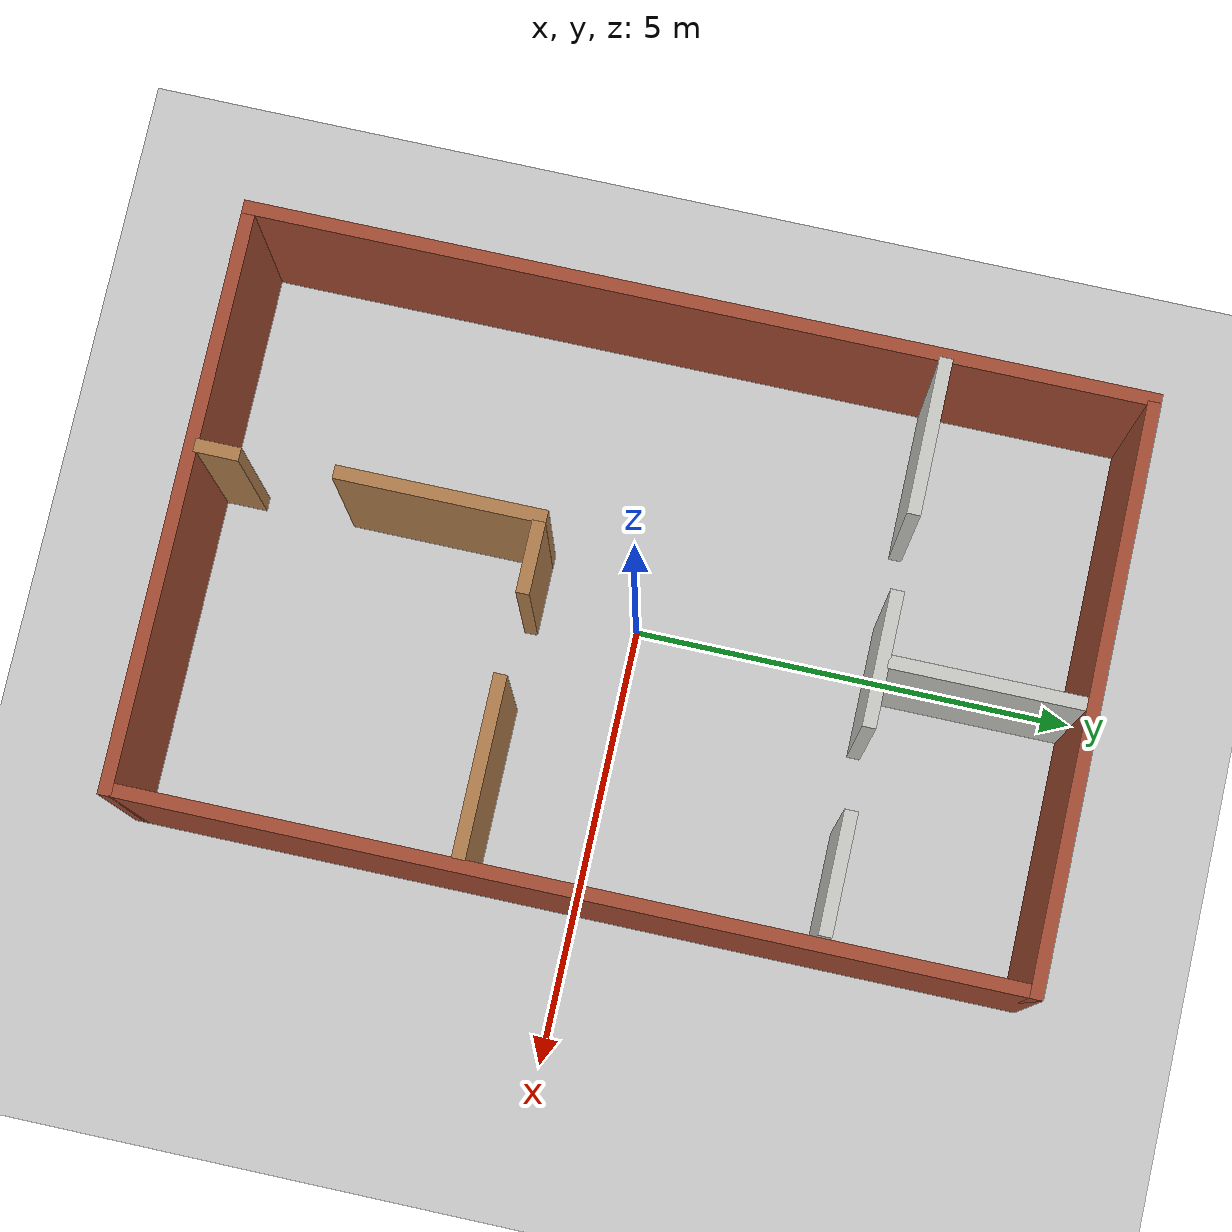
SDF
<?xml version="1.0" ?>
<sdf version="1.5">
  <world name="default">
    <include>
      <uri>model://ground_plane</uri>
    </include>
    <include>
      <uri>model://sun</uri>
    </include>
    <include>
      <pose> 0 0 0 0 0 -1.57</pose>
      <uri>model://Scenario</uri>
    </include>
    <include>
      <uri>model://QR_Code</uri>
      <pose>3.15 -3.0 1.0 0 1.5707 0</pose>
    </include>
  </world>
</sdf>

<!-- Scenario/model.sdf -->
<sdf version='1.7'>
  <model name='Scenario'>
    <pose>0.01 0 0 0 -0 0</pose>
    <link name='Wall_1'>
      <collision name='Wall_1_Collision'>
        <geometry>
          <box>
            <size>10.082 0.15 2.5</size>
          </box>
        </geometry>
        <pose>0 0 1.25 0 -0 0</pose>
      </collision>
      <visual name='Wall_1_Visual'>
        <pose>0 0 1.25 0 -0 0</pose>
        <geometry>
          <box>
            <size>10.082 0.15 2.5</size>
          </box>
        </geometry>
        <material>
          <script>
            <uri>file://media/materials/scripts/gazebo.material</uri>
            <name>Gazebo/Bricks</name>
          </script>
          <ambient>1 1 1 1</ambient>
        </material>
        <meta>
          <layer>0</layer>
        </meta>
      </visual>
      <pose>0 3.225 0 0 -0 0</pose>
    </link>
    <link name='Wall_11'>
      <collision name='Wall_11_Collision'>
        <geometry>
          <box>
            <size>10.08 0.15 2.5</size>
          </box>
        </geometry>
        <pose>0 0 1.25 0 -0 0</pose>
      </collision>
      <visual name='Wall_11_Visual'>
        <pose>0 0 1.25 0 -0 0</pose>
        <geometry>
          <box>
            <size>10.08 0.15 2.5</size>
          </box>
        </geometry>
        <material>
          <script>
            <uri>file://media/materials/scripts/gazebo.material</uri>
            <name>Gazebo/Bricks</name>
          </script>
          <ambient>1 1 1 1</ambient>
        </material>
        <meta>
          <layer>0</layer>
        </meta>
      </visual>
      <pose>0.001 -3.225 0 0 -0 3.14159</pose>
    </link>
    <link name='Wall_13'>
      <collision name='Wall_13_Collision'>
        <geometry>
          <box>
            <size>6.5 0.15 2.5</size>
          </box>
        </geometry>
        <pose>0 0 1.25 0 -0 0</pose>
      </collision>
      <visual name='Wall_13_Visual'>
        <pose>0 0 1.25 0 -0 0</pose>
        <geometry>
          <box>
            <size>6.5 0.15 2.5</size>
          </box>
        </geometry>
        <material>
          <script>
            <uri>file://media/materials/scripts/gazebo.material</uri>
            <name>Gazebo/Bricks</name>
          </script>
          <ambient>1 1 1 1</ambient>
        </material>
        <meta>
          <layer>0</layer>
        </meta>
      </visual>
      <pose>-4.966 0.05 0 0 -0 -1.5708</pose>
    </link>
    <link name='Wall_15'>
      <collision name='Wall_15_Collision'>
        <geometry>
          <box>
            <size>1.35 0.15 2.5</size>
          </box>
        </geometry>
        <pose>0 0 1.25 0 -0 0</pose>
      </collision>
      <visual name='Wall_15_Visual'>
        <pose>0 0 1.25 0 -0 0</pose>
        <geometry>
          <box>
            <size>1.35 0.15 2.5</size>
          </box>
        </geometry>
        <material>
          <script>
            <uri>file://media/materials/scripts/gazebo.material</uri>
            <name>Gazebo/CeilingTiled</name>
          </script>
          <ambient>1 0.764706 0.305882 1</ambient>
        </material>
        <meta>
          <layer>0</layer>
        </meta>
      </visual>
      <pose>-2.70015 2.45469 0 0 -0 -1.5708</pose>
    </link>
    <link name='Wall_17'>
      <collision name='Wall_17_Collision'>
        <geometry>
          <box>
            <size>1.5 0.15 2.5</size>
          </box>
        </geometry>
        <pose>0 0 1.25 0 -0 0</pose>
      </collision>
      <visual name='Wall_17_Visual'>
        <pose>0 0 1.25 0 -0 0</pose>
        <geometry>
          <box>
            <size>1.5 0.15 2.5</size>
          </box>
        </geometry>
        <material>
          <script>
            <uri>file://media/materials/scripts/gazebo.material</uri>
            <name>Gazebo/CeilingTiled</name>
          </script>
          <ambient>1 0.764706 0.305882 1</ambient>
        </material>
        <meta>
          <layer>0</layer>
        </meta>
      </visual>
      <pose>-2.70015 0.136023 0 0 -0 -1.5708</pose>
    </link>
    <link name='Wall_19'>
      <collision name='Wall_19_Collision'>
        <geometry>
          <box>
            <size>2.14985 0.15 2.5</size>
          </box>
        </geometry>
        <pose>0 0 1.25 0 -0 0</pose>
      </collision>
      <visual name='Wall_19_Visual'>
        <pose>0 0 1.25 0 -0 0</pose>
        <geometry>
          <box>
            <size>2.14985 0.15 2.5</size>
          </box>
        </geometry>
        <material>
          <script>
            <uri>file://media/materials/scripts/gazebo.material</uri>
            <name>Gazebo/CeilingTiled</name>
          </script>
          <ambient>1 1 1 1</ambient>
        </material>
        <meta>
          <layer>0</layer>
        </meta>
      </visual>
      <pose>-3.833 0.153 0 0 -0 3.14159</pose>
    </link>
    <link name='Wall_21'>
      <collision name='Wall_21_Collision'>
        <geometry>
          <box>
            <size>1.75 0.15 2.5</size>
          </box>
        </geometry>
        <pose>0 0 1.25 0 -0 0</pose>
      </collision>
      <visual name='Wall_21_Visual'>
        <pose>0 0 1.25 0 -0 0</pose>
        <geometry>
          <box>
            <size>1.75 0.15 2.5</size>
          </box>
        </geometry>
        <material>
          <script>
            <uri>file://media/materials/scripts/gazebo.material</uri>
            <name>Gazebo/CeilingTiled</name>
          </script>
          <ambient>1 0.764706 0.305882 1</ambient>
        </material>
        <meta>
          <layer>0</layer>
        </meta>
      </visual>
      <pose>-2.70015 -2.32424 0 0 -0 1.5708</pose>
    </link>
    <link name='Wall_23'>
      <collision name='Wall_23_Collision'>
        <geometry>
          <box>
            <size>2.00 0.15 2.5</size>
          </box>
        </geometry>
        <pose>0 0 1.25 0 -0 0</pose>
      </collision>
      <visual name='Wall_23_Visual'>
        <pose>0 0 1.25 0 -0 0</pose>
        <geometry>
          <box>
            <size>2.00 0.15 2.5</size>
          </box>
        </geometry>
        <material>
          <script>
            <uri>file://media/materials/scripts/gazebo.material</uri>
            <name>Gazebo/Wood</name>
          </script>
          <ambient>1 1 1 1</ambient>
        </material>
        <meta>
          <layer>0</layer>
        </meta>
      </visual>
      <pose>1.20014 2.15716 0 0 -0 -1.5708</pose>
    </link>
    <link name='Wall_25'>
      <collision name='Wall_25_Collision'>
        <geometry>
          <box>
            <size>0.80 0.15 2.5</size>
          </box>
        </geometry>
        <pose>0 0 1.25 0 -0 0</pose>
      </collision>
      <visual name='Wall_25_Visual'>
        <pose>0 0 1.25 0 -0 0</pose>
        <geometry>
          <box>
            <size>0.80 0.15 2.5</size>
          </box>
        </geometry>
        <material>
          <script>
            <uri>file://media/materials/scripts/gazebo.material</uri>
            <name>Gazebo/Wood</name>
          </script>
          <ambient>1 1 1 1</ambient>
        </material>
        <meta>
          <layer>0</layer>
        </meta>
      </visual>
      <pose>1.165 -0.13 0 0 -0 -1.5708</pose>
    </link>
    <link name='Wall_28'>
      <collision name='Wall_28_Collision'>
        <geometry>
          <box>
            <size>2.326 0.15 2.5</size>
          </box>
        </geometry>
        <pose>0 0 1.25 0 -0 0</pose>
      </collision>
      <visual name='Wall_28_Visual'>
        <pose>0 0 1.25 0 -0 0</pose>
        <geometry>
          <box>
            <size>2.326 0.15 2.5</size>
          </box>
        </geometry>
        <material>
          <script>
            <uri>file://media/materials/scripts/gazebo.material</uri>
            <name>Gazebo/Wood</name>
          </script>
          <ambient>1 1 1 1</ambient>
        </material>
        <meta>
          <layer>0</layer>
        </meta>
      </visual>
      <pose>2.252 -0.588 0 0 -0 3.14159</pose>
    </link>
    <link name='Wall_30'>
      <collision name='Wall_30_Collision'>
        <geometry>
          <box>
            <size>0.5 0.15 2.5</size>
          </box>
        </geometry>
        <pose>0 0 1.25 0 -0 0</pose>
      </collision>
      <visual name='Wall_30_Visual'>
        <pose>0 0 1.25 0 -0 0</pose>
        <geometry>
          <box>
            <size>0.5 0.15 2.5</size>
          </box>
        </geometry>
        <material>
          <script>
            <uri>file://media/materials/scripts/gazebo.material</uri>
            <name>Gazebo/Wood</name>
          </script>
          <ambient>1 1 1 1</ambient>
        </material>
        <meta>
          <layer>0</layer>
        </meta>
      </visual>
      <pose>4.68076 -0.553202 0 0 -0 0</pose>
    </link>
    <link name='Wall_9'>
      <collision name='Wall_9_Collision'>
        <geometry>
          <box>
            <size>6.6 0.15 2.5</size>
          </box>
        </geometry>
        <pose>0 0 1.25 0 -0 0</pose>
      </collision>
      <visual name='Wall_9_Visual'>
        <pose>0 0 1.25 0 -0 0</pose>
        <geometry>
          <box>
            <size>6.6 0.15 2.5</size>
          </box>
        </geometry>
        <material>
          <script>
            <uri>file://media/materials/scripts/gazebo.material</uri>
            <name>Gazebo/Bricks</name>
          </script>
          <ambient>1 1 1 1</ambient>
        </material>
        <meta>
          <layer>0</layer>
        </meta>
      </visual>
      <pose>4.966 0 0 0 -0 -1.5708</pose>
    </link>
    <static>1</static>
  </model>
</sdf>

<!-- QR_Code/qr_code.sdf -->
<sdf version="1.4">
  <model name="QR_Code">
    <static>0</static>
    <link name="qr_code">
      <gravity>true</gravity>
      <inertial>
        <mass>0.1</mass>
        <inertia>
          <ixx>0.000000</ixx>
          <ixy>0.000000</ixy>
          <ixz>0.000000</ixz>
          <iyy>0.000000</iyy>
          <iyz>0.000000</iyz>
          <izz>0.000000</izz>
        </inertia>
      </inertial>
      <visual name="visual">
        <geometry>
          <box>
            <size>0.3 0.3 0.01</size>
            <!-- SIZE OF THE MARKER + MARGIN -->
          </box>
        </geometry>
        <material>
          <script>
	    <uri>model://QR_Code/material/scripts</uri>
	    <uri>model://QR_Code/material/textures</uri>
            <name>QR/Code_8cm</name>
          </script>
        </material>
      </visual>
      <collision name="collision">
        <geometry>
          <box>
            <size>0.4 0.4 0.02</size>
            <!-- SIZE OF THE MARKER + MARGIN -->
          </box>
        </geometry>
        <surface>
          <bounce />
          <friction>
            <ode />
          </friction>
          <contact>
            <ode />
          </contact>
        </surface>
      </collision>
      <self_collide>1</self_collide>
      <kinematic>0</kinematic>
    </link>
  </model>
</sdf>
